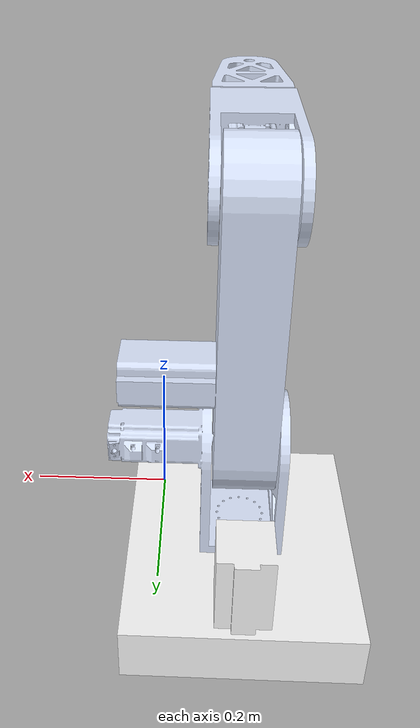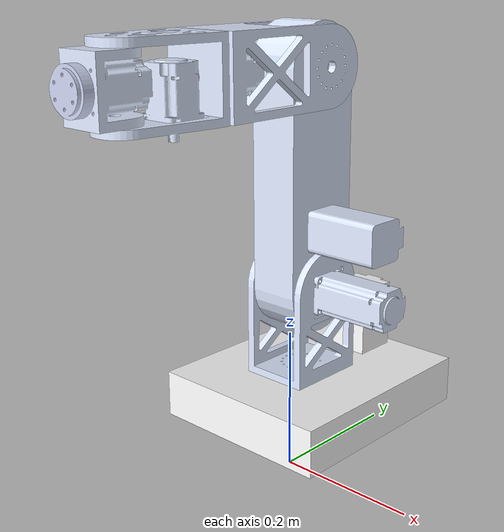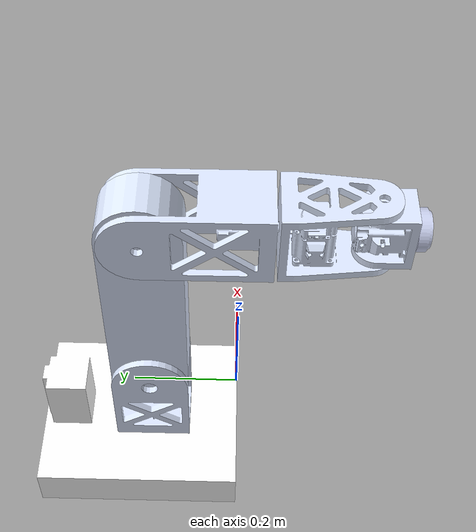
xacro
<?xml version="1.0"?>
<robot xmlns:xacro="http://www.ros.org/wiki/xacro" name="m1u_description">
    <xacro:arg name="initial_positions_file" default="initial_positions.yaml" />

    <!-- Import m1u_description urdf file -->
    <xacro:include filename="$(find m1u_description)/urdf/m1-u_combine.urdf" />

    <!-- Import control_xacro -->
    <xacro:include filename="m1u_description.ros2_control.xacro" />

    <xacro:m1u_description_ros2_control name="FakeSystem" initial_positions_file="$(arg initial_positions_file)"/>

</robot>

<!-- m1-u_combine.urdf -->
<robot
  name="m1u_description">
  <link
    name="base_link">
    <inertial>
      <origin
        xyz="-0.1114 0.17591 0.025474"
        rpy="0 0 0" />
      <mass
        value="7.8796" />
      <inertia
        ixx="0.079979"
        ixy="-2.0404E-09"
        ixz="5.7127E-08"
        iyy="0.051141"
        iyz="2.6407E-05"
        izz="0.13042" />
    </inertial>
    <visual>
      <origin
        xyz="0 0 0"
        rpy="0 0 0" />
      <geometry>
        <mesh
          filename="package://m1u_description/meshes/base_link.STL" />
      </geometry>
      <material
        name="">
        <color
          rgba="1 1 1 1" />
      </material>
    </visual>
    <collision>
      <origin
        xyz="0 0 0"
        rpy="0 0 0" />
      <geometry>
        <mesh
          filename="package://m1u_description/meshes/base_link_col.STL" />
      </geometry>
    </collision>
  </link>
  <link
    name="link1">
    <inertial>
      <origin
        xyz="0.0061177 0.00019417 0.087958"
        rpy="0 0 0" />
      <mass
        value="1.6773" />
      <inertia
        ixx="0.0057689"
        ixy="1.639E-07"
        ixz="5.2341E-06"
        iyy="0.0039153"
        iyz="2.0572E-09"
        izz="0.0028596" />
    </inertial>
    <visual>
      <origin
        xyz="0 0 0"
        rpy="0 0 0" />
      <geometry>
        <mesh
          filename="package://m1u_description/meshes/link1.STL" />
      </geometry>
      <material
        name="">
        <color
          rgba="0.86667 0.9098 1 1" />
      </material>
    </visual>
    <collision>
      <origin
        xyz="0 0 0"
        rpy="0 0 0" />
      <geometry>
        <mesh
          filename="package://m1u_description/meshes/link1_col.STL" />
      </geometry>
    </collision>
  </link>
  <joint
    name="j1"
    type="revolute">
    <origin
      xyz="-0.11135 0.15 0.062"
      rpy="0 0 0" />
    <parent
      link="base_link" />
    <child
      link="link1" />
    <axis
      xyz="0 0 1" />
    <limit
      lower="-3"
      upper="3"
      effort="50"
      velocity="1" />
  </joint>
  <link
    name="link2">
    <inertial>
      <origin
        xyz="0.057214 9.84E-05 0.16426"
        rpy="0 0 0" />
      <mass
        value="3.2856" />
      <inertia
        ixx="0.051188"
        ixy="1.6038E-07"
        ixz="-9.1502E-06"
        iyy="0.047303"
        iyz="5.751E-09"
        izz="0.004433" />
    </inertial>
    <visual>
      <origin
        xyz="0 0 0"
        rpy="0 0 0" />
      <geometry>
        <mesh
          filename="package://m1u_description/meshes/link2.STL" />
      </geometry>
      <material
        name="">
        <color
          rgba="0.86667 0.9098 1 1" />
      </material>
    </visual>
    <collision>
      <origin
        xyz="0 0 0"
        rpy="0 0 0" />
      <geometry>
        <mesh
          filename="package://m1u_description/meshes/link2_col.STL" />
      </geometry>
    </collision>
  </link>
  <joint
    name="j2"
    type="revolute">
    <origin
      xyz="-0.054 0 0.1445"
      rpy="0 0 0" />
    <parent
      link="link1" />
    <child
      link="link2" />
    <axis
      xyz="1 0 0" />
    <limit
      lower="-2"
      upper="2"
      effort="50"
      velocity="1" />
  </joint>
  <link
    name="link3">
    <inertial>
      <origin
        xyz="0.039376 -0.092498 0.0077437"
        rpy="0 0 0" />
      <mass
        value="1.9327" />
      <inertia
        ixx="0.0084639"
        ixy="-5.5424E-08"
        ixz="9.6769E-10"
        iyy="0.0027233"
        iyz="1.0935E-05"
        izz="0.0069108" />
    </inertial>
    <visual>
      <origin
        xyz="0 0 0"
        rpy="0 0 0" />
      <geometry>
        <mesh
          filename="package://m1u_description/meshes/link3.STL" />
      </geometry>
      <material
        name="">
        <color
          rgba="0.86667 0.9098 1 1" />
      </material>
    </visual>
    <collision>
      <origin
        xyz="0 0 0"
        rpy="0 0 0" />
      <geometry>
        <mesh
          filename="package://m1u_description/meshes/link3_col.STL" />
      </geometry>
    </collision>
  </link>
  <joint
    name="j3"
    type="revolute">
    <origin
      xyz="0.0145 0 0.34"
      rpy="0 0 0" />
    <parent
      link="link2" />
    <child
      link="link3" />
    <axis
      xyz="-1 0 0" />
    <limit
      lower="-2"
      upper="2"
      effort="50"
      velocity="2" />
  </joint>
  <link
    name="link4">
    <inertial>
      <origin
        xyz="-0.00012966 -0.062233 -0.0040436"
        rpy="0 0 0" />
      <mass
        value="1.1685" />
      <inertia
        ixx="0.0019881"
        ixy="9.6769E-10"
        ixz="-6.3547E-08"
        iyy="0.0014229"
        iyz="5.672E-06"
        izz="0.0023972" />
    </inertial>
    <visual>
      <origin
        xyz="0 0 0"
        rpy="0 0 0" />
      <geometry>
        <mesh
          filename="package://m1u_description/meshes/link4.STL" />
      </geometry>
      <material
        name="">
        <color
          rgba="0.86667 0.9098 1 1" />
      </material>
    </visual>
    <collision>
      <origin
        xyz="0 0 0"
        rpy="0 0 0" />
      <geometry>
        <mesh
          filename="package://m1u_description/meshes/link4_col.STL" />
      </geometry>
    </collision>
  </link>
  <joint
    name="j4"
    type="revolute">
    <origin
      xyz="0.0395 -0.197 0"
      rpy="0 0 0" />
    <parent
      link="link3" />
    <child
      link="link4" />
    <axis
      xyz="0 -1 0" />
    <limit
      lower="-3"
      upper="3"
      effort="50"
      velocity="3" />
  </joint>
  <link
    name="link5">
    <inertial>
      <origin
        xyz="-0.00027872 -0.01747 -0.060001"
        rpy="0 0 0" />
      <mass
        value="0.5436" />
      <inertia
        ixx="0.00028276"
        ixy="-6.3547E-08"
        ixz="-9.6769E-10"
        iyy="0.00029666"
        iyz="-5.5424E-08"
        izz="0.00041219" />
    </inertial>
    <visual>
      <origin
        xyz="0 0 0"
        rpy="0 0 0" />
      <geometry>
        <mesh
          filename="package://m1u_description/meshes/link5.STL" />
      </geometry>
      <material
        name="">
        <color
          rgba="0.86667 0.9098 1 1" />
      </material>
    </visual>
    <collision>
      <origin
        xyz="0 0 0"
        rpy="0 0 0" />
      <geometry>
        <mesh
          filename="package://m1u_description/meshes/link5_col.STL" />
      </geometry>
    </collision>
  </link>
  <joint
    name="j5"
    type="revolute">
    <origin
      xyz="0 -0.14976 0.06"
      rpy="0 0 0" />
    <parent
      link="link4" />
    <child
      link="link5" />
    <axis
      xyz="0 0 -1" />
    <limit
      lower="-2"
      upper="2"
      effort="50"
      velocity="3" />
  </joint>
  <link
    name="link6">
    <inertial>
      <origin
        xyz="-1.4988E-15 -0.011336 -6.6613E-16"
        rpy="0 0 0" />
      <mass
        value="0.059887" />
      <inertia
        ixx="1.69E-05"
        ixy="1.7186E-19"
        ixz="1.628E-20"
        iyy="3.0067E-05"
        iyz="6.324E-20"
        izz="1.69E-05" />
    </inertial>
    <visual>
      <origin
        xyz="0 0 0"
        rpy="0 0 0" />
      <geometry>
        <mesh
          filename="package://m1u_description/meshes/link6.STL" />
      </geometry>
      <material
        name="">
        <color
          rgba="0.79216 0.81961 0.93333 1" />
      </material>
    </visual>
    <collision>
      <origin
        xyz="0 0 0"
        rpy="0 0 0" />
      <geometry>
        <mesh
          filename="package://m1u_description/meshes/link6_col.STL" />
      </geometry>
    </collision>
  </link>
  <joint
    name="j6"
    type="revolute">
    <origin
      xyz="0 -0.05 -0.06"
      rpy="0 0 0" />
    <parent
      link="link5" />
    <child
      link="link6" />
    <axis
      xyz="0 -1 0" />
    <limit
      lower="-10"
      upper="10"
      effort="50"
      velocity="8" />
  </joint>
</robot>
